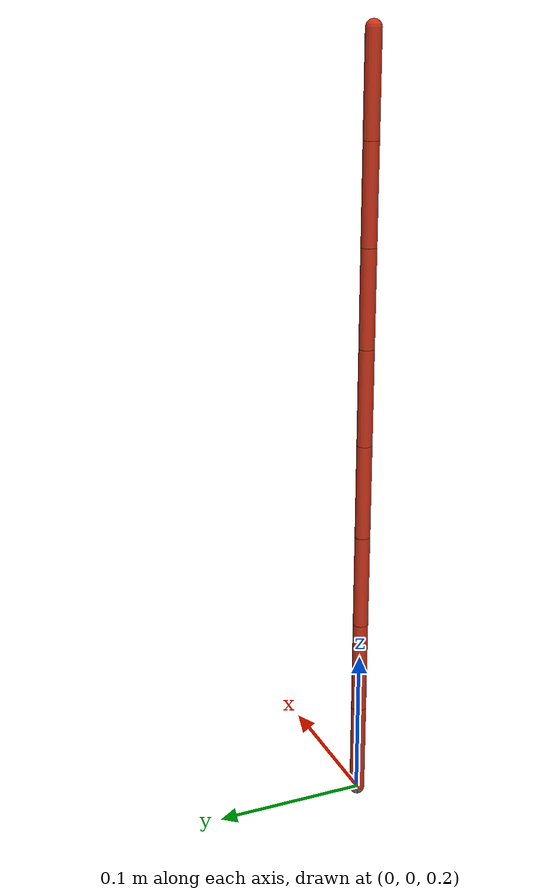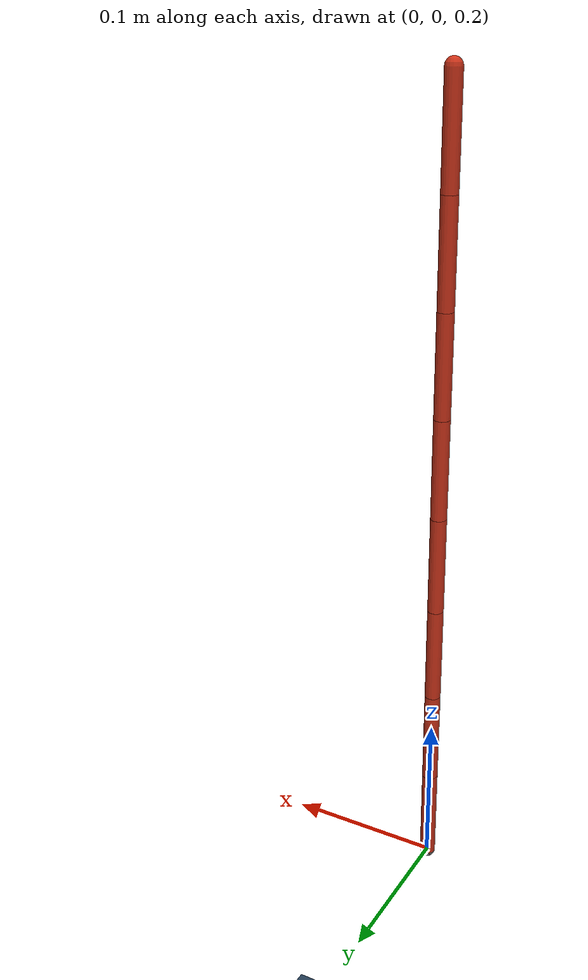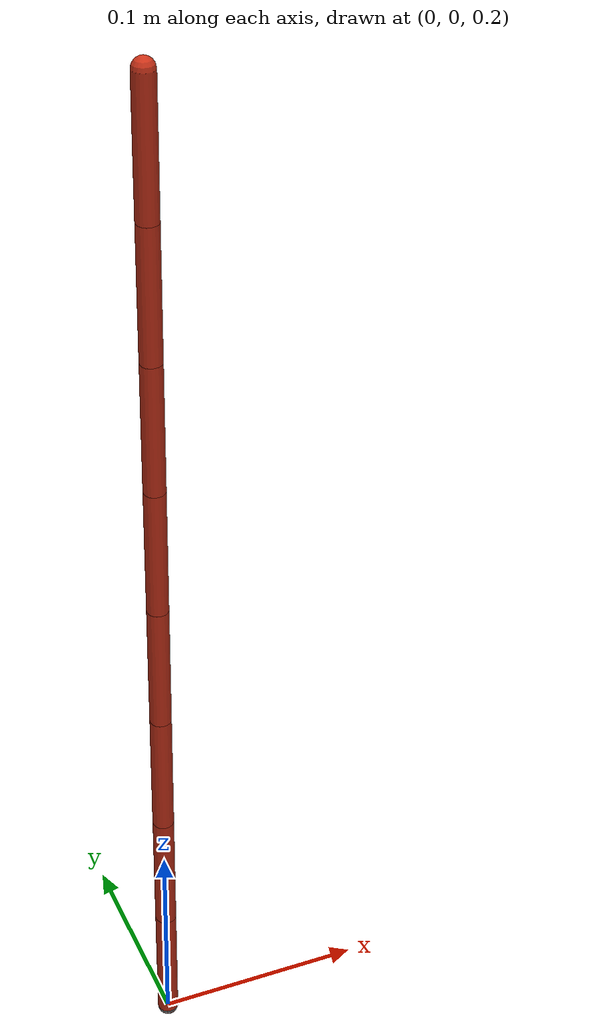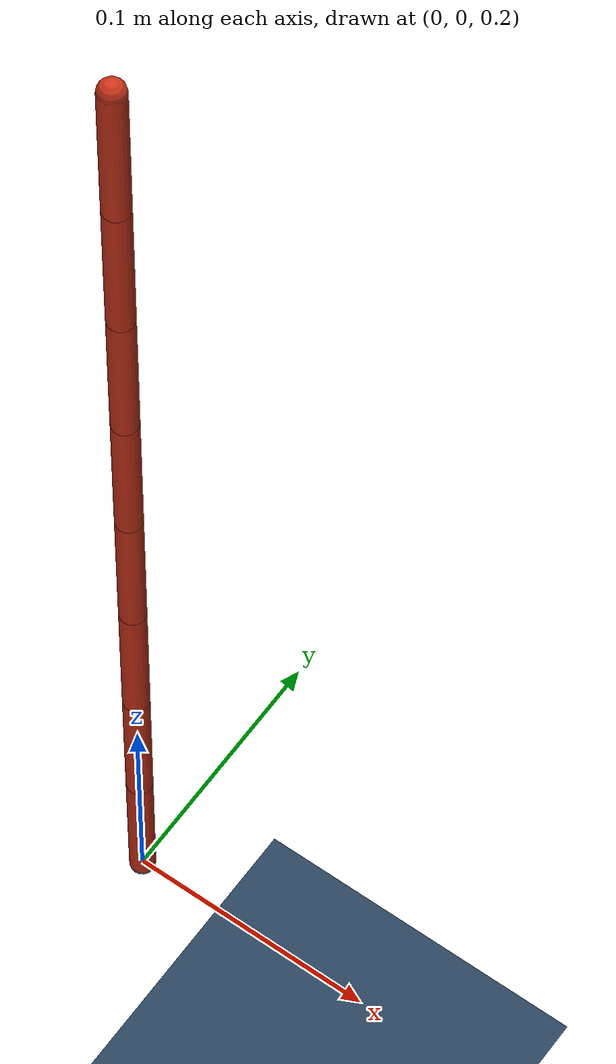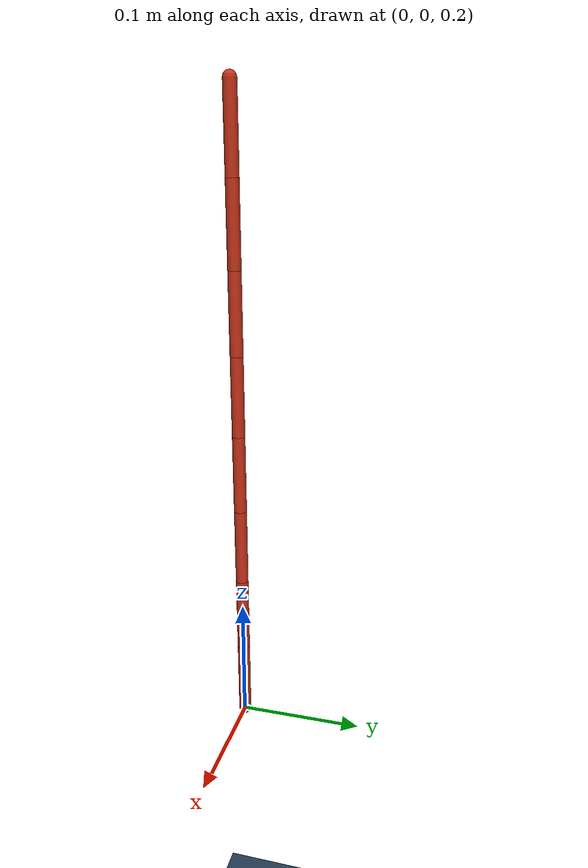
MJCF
<mujoco model="cable_trunk_model_example">
  <compiler angle="radian"/>

  <extension>
    <plugin plugin="mujoco.elasticity.cable"/>
  </extension>

  <custom>
    <text name="composite_actuated" data="rope_actuated"/>
  </custom>

  <asset>
    <texture type="2d" name="grid" builtin="checker" rgb1="0.1 0.2 0.3" rgb2="0.2 0.3 0.4" width="300" height="300"/>
    <material name="grid" texture="grid" texrepeat="8 8" reflectance="0.2"/>
  </asset>

  <worldbody>
    <camera name="yz_view" pos="0 -1.3 0.35" xyaxes="1 0 0 0 0 1"/>
    <geom size="10 10 0.01" type="plane" material="grid"/>
    <light pos="0 0 2" dir="0 0 -1"/>
    <body name="actuatedB_first" pos="0 0 0.7" quat="0 -0.707107 0 0.707107">
      <joint name="actuatedJ_0" pos="0 0 0" type="hinge"  axis="0 1 0" group="3" stiffness="1.55" actuatorfrclimited="false" damping="0.0765"/>
      <geom name="actuatedG0" size="0.005 0.03125" pos="0.03125 0 0" quat="0.707107 0 -0.707107 0" type="capsule" rgba="0.8 0.2 0.1 1"/>
      <site name="actuatedS_first" pos="0 0 0" group="3"/>
      <body name="actuatedB_1" pos="0.0625 0 0">
        <joint name="actuatedJ_1" pos="0 0 0" type="hinge"  axis="0 1 0" group="3" stiffness="1.55" actuatorfrclimited="false" damping="0.0765"/>
        <geom name="actuatedG1" size="0.005 0.03125" pos="0.03125 0 0" quat="0.707107 0 -0.707107 0" type="capsule" rgba="0.8 0.2 0.1 1"/>
        <body name="actuatedB_2" pos="0.0625 0 0">
          <joint name="actuatedJ_2" pos="0 0 0" type="hinge"  axis="0 1 0" group="3" stiffness="1.55" actuatorfrclimited="false" damping="0.0765"/>
          <geom name="actuatedG2" size="0.005 0.03125" pos="0.03125 0 0" quat="0.707107 0 -0.707107 0" type="capsule" rgba="0.8 0.2 0.1 1"/>
          <body name="actuatedB_3" pos="0.0625 0 0">
            <joint name="actuatedJ_3" pos="0 0 0" type="hinge"  axis="0 1 0" group="3" stiffness="1.55" actuatorfrclimited="false" damping="0.0765"/>
            <geom name="actuatedG3" size="0.005 0.03125" pos="0.03125 0 0" quat="0.707107 0 -0.707107 0" type="capsule" rgba="0.8 0.2 0.1 1"/>
            <body name="actuatedB_4" pos="0.0625 0 0">
              <joint name="actuatedJ_4" pos="0 0 0" type="hinge"  axis="0 1 0" group="3" stiffness="1.55" actuatorfrclimited="false" damping="0.0765"/>
              <geom name="actuatedG4" size="0.005 0.03125" pos="0.03125 0 0" quat="0.707107 0 -0.707107 0" type="capsule" rgba="0.8 0.2 0.1 1"/>
              <body name="actuatedB_5" pos="0.0625 0 0">
                <joint name="actuatedJ_5" pos="0 0 0" type="hinge"  axis="0 1 0" group="3" stiffness="1.55" actuatorfrclimited="false" damping="0.0765"/>
                <geom name="actuatedG5" size="0.005 0.03125" pos="0.03125 0 0" quat="0.707107 0 -0.707107 0" type="capsule" rgba="0.8 0.2 0.1 1"/>
                <body name="actuatedB_6" pos="0.0625 0 0">
                  <joint name="actuatedJ_6" pos="0 0 0" type="hinge"  axis="0 1 0" group="3" stiffness="1.55" actuatorfrclimited="false" damping="0.0765"/>
                  <geom name="actuatedG6" size="0.005 0.03125" pos="0.03125 0 0" quat="0.707107 0 -0.707107 0" type="capsule" rgba="0.8 0.2 0.1 1"/>
                  <body name="actuatedB_last" pos="0.0625 0 0">
                    <joint name="actuatedJ_7" pos="0 0 0" type="hinge"  axis="0 1 0" group="3" stiffness="1.55" actuatorfrclimited="false" damping="0.0765"/>
                    <geom name="actuatedG7" size="0.005 0.03125" pos="0.03125 0 0" quat="0.707107 0 -0.707107 0" type="capsule" rgba="0.8 0.2 0.1 1"/>
                    <site name="actuatedS_last" pos="0.0625 0 0" group="3"/>
                    <site name="endeffector" pos="0.0625 0 0"/>
                  </body>
                </body>
              </body>
            </body>
          </body>
        </body>
      </body>
    </body>
  </worldbody>

  <actuator>
    <motor name="actuator_0" joint="actuatedJ_0" gear="2"/>
    <motor name="actuator_1" joint="actuatedJ_1" gear="2"/>
    <motor name="actuator_2" joint="actuatedJ_2" gear="2"/>
    <motor name="actuator_3" joint="actuatedJ_3" gear="2"/>
    <motor name="actuator_4" joint="actuatedJ_4" gear="2"/>
    <motor name="actuator_5" joint="actuatedJ_5" gear="2"/>
    <motor name="actuator_6" joint="actuatedJ_6" gear="2"/>
    <motor name="actuator_7" joint="actuatedJ_7" gear="2"/>
  </actuator>

  <contact>
    <exclude body1="actuatedB_first" body2="actuatedB_1"/>
    <exclude body1="actuatedB_1" body2="actuatedB_2"/>
    <exclude body1="actuatedB_2" body2="actuatedB_3"/>
    <exclude body1="actuatedB_3" body2="actuatedB_4"/>
    <exclude body1="actuatedB_4" body2="actuatedB_5"/>
    <exclude body1="actuatedB_5" body2="actuatedB_6"/>
    <exclude body1="actuatedB_6" body2="actuatedB_last"/>
  </contact>

  <visual>
  <global offwidth="1920" offheight="1080"/>
  </visual>

</mujoco>
